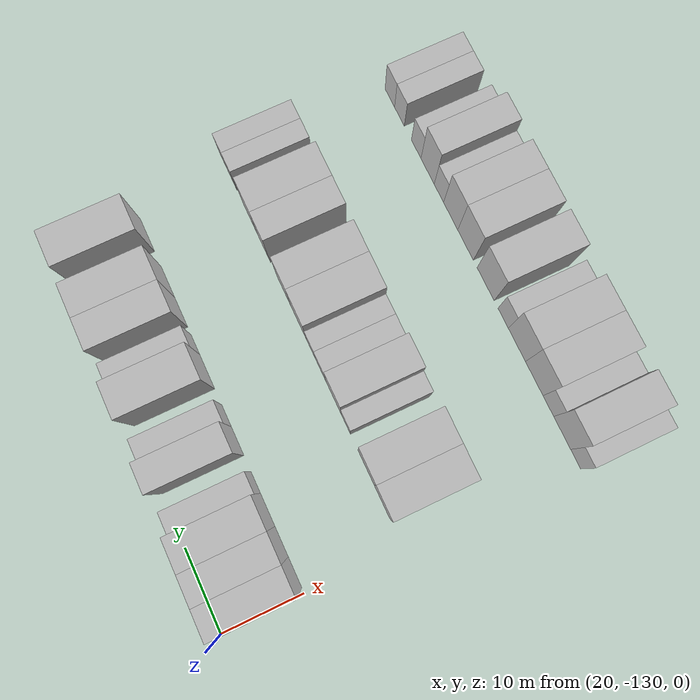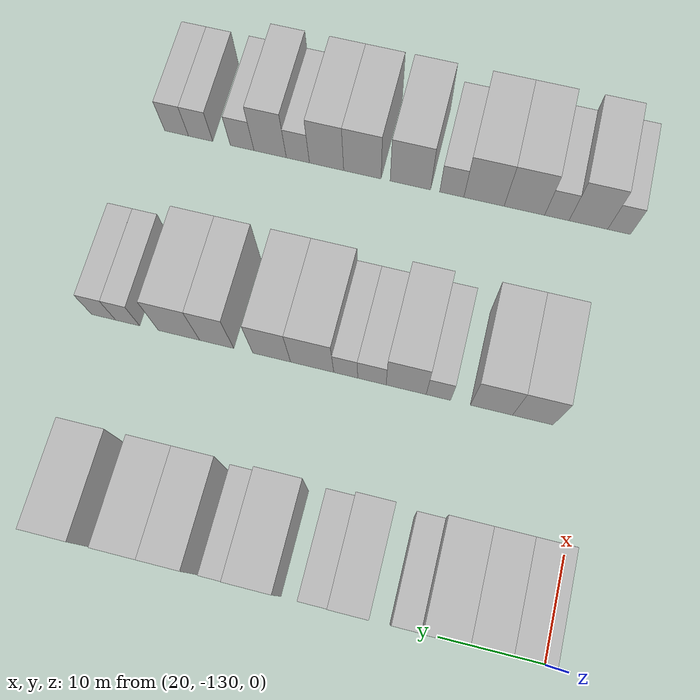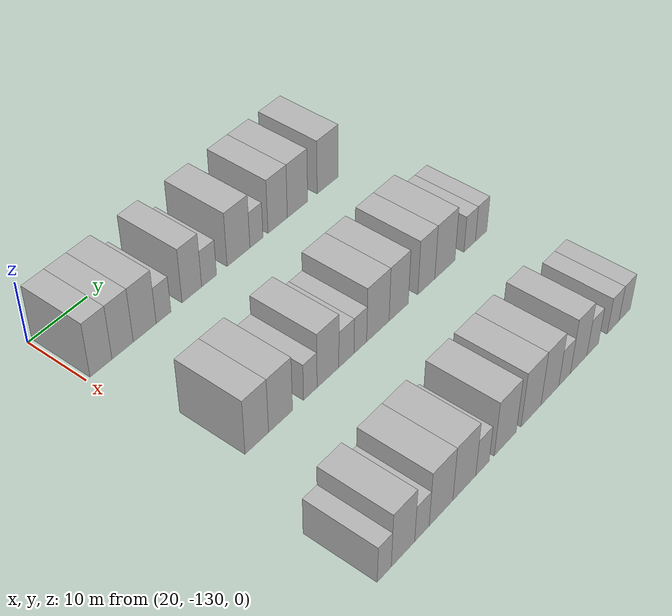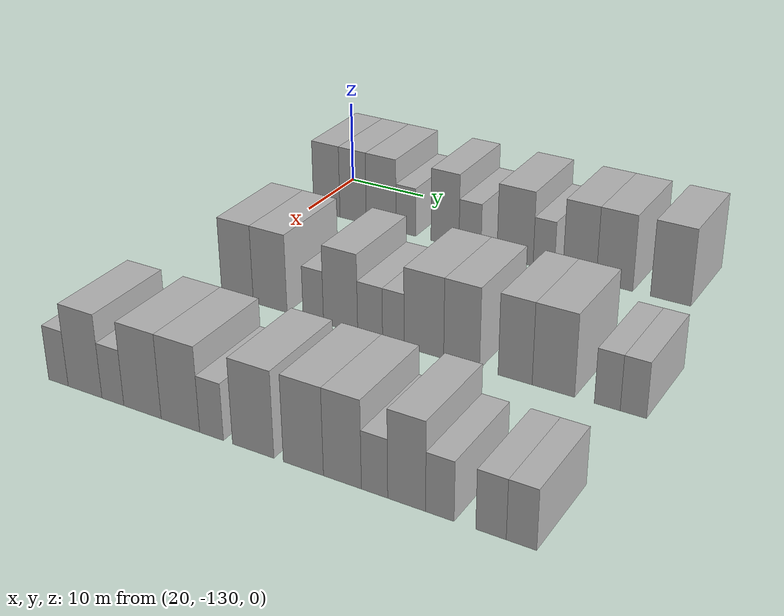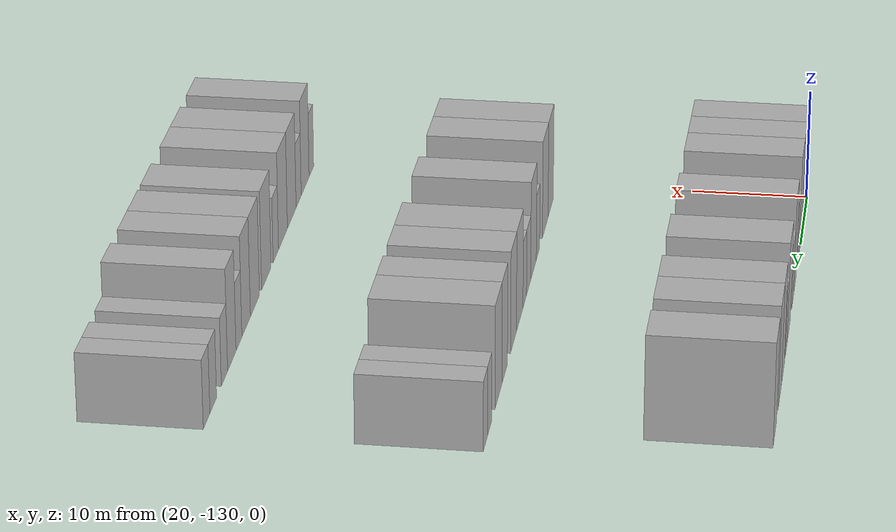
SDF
<sdf version="1.6">
 <world name="default">
  <model name="building_69">
   <static>1</static>
   <pose>25.0000 -127.5275 0 0.000000 0.000000 0.000000</pose>
   <link name="link">
    <pose>0 0 4.50 0 0 0</pose>
    <collision name="collision"><geometry><box><size>10.0000 3.6761 9.0000</size></box></geometry></collision>
    <visual name="visual">
     <cast_shadows>0</cast_shadows>
     <geometry><box><size>10.0000 3.6761 9.0000</size></box></geometry>
     <material>
      <script>
       <uri>model://HANNAS_wall/materials/scripts</uri>
       <uri>model://HANNAS_wall/materials/textures</uri>
       <name>vrc/HANNAS_wall</name>
      </script>
     </material>
    </visual>
   </link>
  </model>
  <model name="building_70">
   <static>1</static>
   <pose>25.0000 -123.8749 0 0.000000 0.000000 0.000000</pose>
   <link name="link">
    <pose>0 0 4.50 0 0 0</pose>
    <collision name="collision"><geometry><box><size>10.0000 3.6291 9.0000</size></box></geometry></collision>
    <visual name="visual">
     <cast_shadows>0</cast_shadows>
     <geometry><box><size>10.0000 3.6291 9.0000</size></box></geometry>
     <material>
      <script>
       <uri>model://HANNAS_wall/materials/scripts</uri>
       <uri>model://HANNAS_wall/materials/textures</uri>
       <name>vrc/HANNAS_wall</name>
      </script>
     </material>
    </visual>
   </link>
  </model>
  <model name="building_71">
   <static>1</static>
   <pose>25.0000 -120.0522 0 0.000000 0.000000 0.000000</pose>
   <link name="link">
    <pose>0 0 4.50 0 0 0</pose>
    <collision name="collision"><geometry><box><size>10.0000 4.0163 9.0000</size></box></geometry></collision>
    <visual name="visual">
     <cast_shadows>0</cast_shadows>
     <geometry><box><size>10.0000 4.0163 9.0000</size></box></geometry>
     <material>
      <script>
       <uri>model://HANNAS_wall/materials/scripts</uri>
       <uri>model://HANNAS_wall/materials/textures</uri>
       <name>vrc/HANNAS_wall</name>
      </script>
     </material>
    </visual>
   </link>
  </model>
  <model name="building_72">
   <static>1</static>
   <pose>25.0000 -116.7305 0 0.000000 0.000000 0.000000</pose>
   <link name="link">
    <pose>0 0 3.00 0 0 0</pose>
    <collision name="collision"><geometry><box><size>10.0000 2.6270 6.0000</size></box></geometry></collision>
    <visual name="visual">
     <cast_shadows>0</cast_shadows>
     <geometry><box><size>10.0000 2.6270 6.0000</size></box></geometry>
     <material>
      <script>
       <uri>model://HANNAS_wall/materials/scripts</uri>
       <uri>model://HANNAS_wall/materials/textures</uri>
       <name>vrc/HANNAS_wall</name>
      </script>
     </material>
    </visual>
   </link>
  </model>
  <model name="building_73">
   <static>1</static>
   <pose>25.0000 -111.6111 0 0.000000 0.000000 0.000000</pose>
   <link name="link">
    <pose>0 0 4.50 0 0 0</pose>
    <collision name="collision"><geometry><box><size>10.0000 3.6118 9.0000</size></box></geometry></collision>
    <visual name="visual">
     <cast_shadows>0</cast_shadows>
     <geometry><box><size>10.0000 3.6118 9.0000</size></box></geometry>
     <material>
      <script>
       <uri>model://HANNAS_wall/materials/scripts</uri>
       <uri>model://HANNAS_wall/materials/textures</uri>
       <name>vrc/HANNAS_wall</name>
      </script>
     </material>
    </visual>
   </link>
  </model>
  <model name="building_74">
   <static>1</static>
   <pose>25.0000 -108.4069 0 0.000000 0.000000 0.000000</pose>
   <link name="link">
    <pose>0 0 3.00 0 0 0</pose>
    <collision name="collision"><geometry><box><size>10.0000 2.7967 6.0000</size></box></geometry></collision>
    <visual name="visual">
     <cast_shadows>0</cast_shadows>
     <geometry><box><size>10.0000 2.7967 6.0000</size></box></geometry>
     <material>
      <script>
       <uri>model://HANNAS_wall/materials/scripts</uri>
       <uri>model://HANNAS_wall/materials/textures</uri>
       <name>vrc/HANNAS_wall</name>
      </script>
     </material>
    </visual>
   </link>
  </model>
  <model name="building_75">
   <static>1</static>
   <pose>25.0000 -102.7886 0 0.000000 0.000000 0.000000</pose>
   <link name="link">
    <pose>0 0 4.50 0 0 0</pose>
    <collision name="collision"><geometry><box><size>10.0000 4.4398 9.0000</size></box></geometry></collision>
    <visual name="visual">
     <cast_shadows>0</cast_shadows>
     <geometry><box><size>10.0000 4.4398 9.0000</size></box></geometry>
     <material>
      <script>
       <uri>model://HANNAS_wall/materials/scripts</uri>
       <uri>model://HANNAS_wall/materials/textures</uri>
       <name>vrc/HANNAS_wall</name>
      </script>
     </material>
    </visual>
   </link>
  </model>
  <model name="building_76">
   <static>1</static>
   <pose>25.0000 -99.2753 0 0.000000 0.000000 0.000000</pose>
   <link name="link">
    <pose>0 0 3.00 0 0 0</pose>
    <collision name="collision"><geometry><box><size>10.0000 2.5870 6.0000</size></box></geometry></collision>
    <visual name="visual">
     <cast_shadows>0</cast_shadows>
     <geometry><box><size>10.0000 2.5870 6.0000</size></box></geometry>
     <material>
      <script>
       <uri>model://HANNAS_wall/materials/scripts</uri>
       <uri>model://HANNAS_wall/materials/textures</uri>
       <name>vrc/HANNAS_wall</name>
      </script>
     </material>
    </visual>
   </link>
  </model>
  <model name="building_77">
   <static>1</static>
   <pose>25.0000 -95.0126 0 0.000000 0.000000 0.000000</pose>
   <link name="link">
    <pose>0 0 4.50 0 0 0</pose>
    <collision name="collision"><geometry><box><size>10.0000 3.9384 9.0000</size></box></geometry></collision>
    <visual name="visual">
     <cast_shadows>0</cast_shadows>
     <geometry><box><size>10.0000 3.9384 9.0000</size></box></geometry>
     <material>
      <script>
       <uri>model://HANNAS_wall/materials/scripts</uri>
       <uri>model://HANNAS_wall/materials/textures</uri>
       <name>vrc/HANNAS_wall</name>
      </script>
     </material>
    </visual>
   </link>
  </model>
  <model name="building_78">
   <static>1</static>
   <pose>25.0000 -90.9410 0 0.000000 0.000000 0.000000</pose>
   <link name="link">
    <pose>0 0 4.50 0 0 0</pose>
    <collision name="collision"><geometry><box><size>10.0000 4.2049 9.0000</size></box></geometry></collision>
    <visual name="visual">
     <cast_shadows>0</cast_shadows>
     <geometry><box><size>10.0000 4.2049 9.0000</size></box></geometry>
     <material>
      <script>
       <uri>model://HANNAS_wall/materials/scripts</uri>
       <uri>model://HANNAS_wall/materials/textures</uri>
       <name>vrc/HANNAS_wall</name>
      </script>
     </material>
    </visual>
   </link>
  </model>
  <model name="building_79">
   <static>1</static>
   <pose>25.0000 -84.5899 0 0.000000 0.000000 0.000000</pose>
   <link name="link">
    <pose>0 0 4.50 0 0 0</pose>
    <collision name="collision"><geometry><box><size>10.0000 4.4974 9.0000</size></box></geometry></collision>
    <visual name="visual">
     <cast_shadows>0</cast_shadows>
     <geometry><box><size>10.0000 4.4974 9.0000</size></box></geometry>
     <material>
      <script>
       <uri>model://HANNAS_wall/materials/scripts</uri>
       <uri>model://HANNAS_wall/materials/textures</uri>
       <name>vrc/HANNAS_wall</name>
      </script>
     </material>
    </visual>
   </link>
  </model>
  <model name="building_256">
   <static>1</static>
   <pose>47.0000 -124.7007 0 0.000000 0.000000 0.000000</pose>
   <link name="link">
    <pose>0 0 4.50 0 0 0</pose>
    <collision name="collision"><geometry><box><size>10.0000 4.0787 9.0000</size></box></geometry></collision>
    <visual name="visual">
     <cast_shadows>0</cast_shadows>
     <geometry><box><size>10.0000 4.0787 9.0000</size></box></geometry>
     <material>
      <script>
       <uri>model://HANNAS_wall/materials/scripts</uri>
       <uri>model://HANNAS_wall/materials/textures</uri>
       <name>vrc/HANNAS_wall</name>
      </script>
     </material>
    </visual>
   </link>
  </model>
  <model name="building_257">
   <static>1</static>
   <pose>47.0000 -120.5277 0 0.000000 0.000000 0.000000</pose>
   <link name="link">
    <pose>0 0 4.50 0 0 0</pose>
    <collision name="collision"><geometry><box><size>10.0000 4.2673 9.0000</size></box></geometry></collision>
    <visual name="visual">
     <cast_shadows>0</cast_shadows>
     <geometry><box><size>10.0000 4.2673 9.0000</size></box></geometry>
     <material>
      <script>
       <uri>model://HANNAS_wall/materials/scripts</uri>
       <uri>model://HANNAS_wall/materials/textures</uri>
       <name>vrc/HANNAS_wall</name>
      </script>
     </material>
    </visual>
   </link>
  </model>
  <model name="building_258">
   <static>1</static>
   <pose>47.0000 -115.1476 0 0.000000 0.000000 0.000000</pose>
   <link name="link">
    <pose>0 0 3.00 0 0 0</pose>
    <collision name="collision"><geometry><box><size>10.0000 2.4930 6.0000</size></box></geometry></collision>
    <visual name="visual">
     <cast_shadows>0</cast_shadows>
     <geometry><box><size>10.0000 2.4930 6.0000</size></box></geometry>
     <material>
      <script>
       <uri>model://HANNAS_wall/materials/scripts</uri>
       <uri>model://HANNAS_wall/materials/textures</uri>
       <name>vrc/HANNAS_wall</name>
      </script>
     </material>
    </visual>
   </link>
  </model>
  <model name="building_259">
   <static>1</static>
   <pose>47.0000 -111.8513 0 0.000000 0.000000 0.000000</pose>
   <link name="link">
    <pose>0 0 4.50 0 0 0</pose>
    <collision name="collision"><geometry><box><size>10.0000 4.0994 9.0000</size></box></geometry></collision>
    <visual name="visual">
     <cast_shadows>0</cast_shadows>
     <geometry><box><size>10.0000 4.0994 9.0000</size></box></geometry>
     <material>
      <script>
       <uri>model://HANNAS_wall/materials/scripts</uri>
       <uri>model://HANNAS_wall/materials/textures</uri>
       <name>vrc/HANNAS_wall</name>
      </script>
     </material>
    </visual>
   </link>
  </model>
  <model name="building_260">
   <static>1</static>
   <pose>47.0000 -108.3409 0 0.000000 0.000000 0.000000</pose>
   <link name="link">
    <pose>0 0 3.00 0 0 0</pose>
    <collision name="collision"><geometry><box><size>10.0000 2.9214 6.0000</size></box></geometry></collision>
    <visual name="visual">
     <cast_shadows>0</cast_shadows>
     <geometry><box><size>10.0000 2.9214 6.0000</size></box></geometry>
     <material>
      <script>
       <uri>model://HANNAS_wall/materials/scripts</uri>
       <uri>model://HANNAS_wall/materials/textures</uri>
       <name>vrc/HANNAS_wall</name>
      </script>
     </material>
    </visual>
   </link>
  </model>
  <model name="building_261">
   <static>1</static>
   <pose>47.0000 -105.6420 0 0.000000 0.000000 0.000000</pose>
   <link name="link">
    <pose>0 0 3.00 0 0 0</pose>
    <collision name="collision"><geometry><box><size>10.0000 2.4766 6.0000</size></box></geometry></collision>
    <visual name="visual">
     <cast_shadows>0</cast_shadows>
     <geometry><box><size>10.0000 2.4766 6.0000</size></box></geometry>
     <material>
      <script>
       <uri>model://HANNAS_wall/materials/scripts</uri>
       <uri>model://HANNAS_wall/materials/textures</uri>
       <name>vrc/HANNAS_wall</name>
      </script>
     </material>
    </visual>
   </link>
  </model>
  <model name="building_262">
   <static>1</static>
   <pose>47.0000 -102.1589 0 0.000000 0.000000 0.000000</pose>
   <link name="link">
    <pose>0 0 4.50 0 0 0</pose>
    <collision name="collision"><geometry><box><size>10.0000 4.4896 9.0000</size></box></geometry></collision>
    <visual name="visual">
     <cast_shadows>0</cast_shadows>
     <geometry><box><size>10.0000 4.4896 9.0000</size></box></geometry>
     <material>
      <script>
       <uri>model://HANNAS_wall/materials/scripts</uri>
       <uri>model://HANNAS_wall/materials/textures</uri>
       <name>vrc/HANNAS_wall</name>
      </script>
     </material>
    </visual>
   </link>
  </model>
  <model name="building_263">
   <static>1</static>
   <pose>47.0000 -97.9338 0 0.000000 0.000000 0.000000</pose>
   <link name="link">
    <pose>0 0 4.50 0 0 0</pose>
    <collision name="collision"><geometry><box><size>10.0000 3.9607 9.0000</size></box></geometry></collision>
    <visual name="visual">
     <cast_shadows>0</cast_shadows>
     <geometry><box><size>10.0000 3.9607 9.0000</size></box></geometry>
     <material>
      <script>
       <uri>model://HANNAS_wall/materials/scripts</uri>
       <uri>model://HANNAS_wall/materials/textures</uri>
       <name>vrc/HANNAS_wall</name>
      </script>
     </material>
    </visual>
   </link>
  </model>
  <model name="building_264">
   <static>1</static>
   <pose>47.0000 -92.1498 0 0.000000 0.000000 0.000000</pose>
   <link name="link">
    <pose>0 0 4.50 0 0 0</pose>
    <collision name="collision"><geometry><box><size>10.0000 3.6073 9.0000</size></box></geometry></collision>
    <visual name="visual">
     <cast_shadows>0</cast_shadows>
     <geometry><box><size>10.0000 3.6073 9.0000</size></box></geometry>
     <material>
      <script>
       <uri>model://HANNAS_wall/materials/scripts</uri>
       <uri>model://HANNAS_wall/materials/textures</uri>
       <name>vrc/HANNAS_wall</name>
      </script>
     </material>
    </visual>
   </link>
  </model>
  <model name="building_265">
   <static>1</static>
   <pose>47.0000 -88.1483 0 0.000000 0.000000 0.000000</pose>
   <link name="link">
    <pose>0 0 4.50 0 0 0</pose>
    <collision name="collision"><geometry><box><size>10.0000 4.3957 9.0000</size></box></geometry></collision>
    <visual name="visual">
     <cast_shadows>0</cast_shadows>
     <geometry><box><size>10.0000 4.3957 9.0000</size></box></geometry>
     <material>
      <script>
       <uri>model://HANNAS_wall/materials/scripts</uri>
       <uri>model://HANNAS_wall/materials/textures</uri>
       <name>vrc/HANNAS_wall</name>
      </script>
     </material>
    </visual>
   </link>
  </model>
  <model name="building_266">
   <static>1</static>
   <pose>47.0000 -82.6605 0 0.000000 0.000000 0.000000</pose>
   <link name="link">
    <pose>0 0 3.00 0 0 0</pose>
    <collision name="collision"><geometry><box><size>10.0000 2.5800 6.0000</size></box></geometry></collision>
    <visual name="visual">
     <cast_shadows>0</cast_shadows>
     <geometry><box><size>10.0000 2.5800 6.0000</size></box></geometry>
     <material>
      <script>
       <uri>model://HANNAS_wall/materials/scripts</uri>
       <uri>model://HANNAS_wall/materials/textures</uri>
       <name>vrc/HANNAS_wall</name>
      </script>
     </material>
    </visual>
   </link>
  </model>
  <model name="building_267">
   <static>1</static>
   <pose>47.0000 -80.0759 0 0.000000 0.000000 0.000000</pose>
   <link name="link">
    <pose>0 0 3.00 0 0 0</pose>
    <collision name="collision"><geometry><box><size>10.0000 2.5891 6.0000</size></box></geometry></collision>
    <visual name="visual">
     <cast_shadows>0</cast_shadows>
     <geometry><box><size>10.0000 2.5891 6.0000</size></box></geometry>
     <material>
      <script>
       <uri>model://HANNAS_wall/materials/scripts</uri>
       <uri>model://HANNAS_wall/materials/textures</uri>
       <name>vrc/HANNAS_wall</name>
      </script>
     </material>
    </visual>
   </link>
  </model>
  <model name="building_444">
   <static>1</static>
   <pose>69.0000 -129.8212 0 0.000000 0.000000 0.000000</pose>
   <link name="link">
    <pose>0 0 3.00 0 0 0</pose>
    <collision name="collision"><geometry><box><size>10.0000 2.4274 6.0000</size></box></geometry></collision>
    <visual name="visual">
     <cast_shadows>0</cast_shadows>
     <geometry><box><size>10.0000 2.4274 6.0000</size></box></geometry>
     <material>
      <script>
       <uri>model://HANNAS_wall/materials/scripts</uri>
       <uri>model://HANNAS_wall/materials/textures</uri>
       <name>vrc/HANNAS_wall</name>
      </script>
     </material>
    </visual>
   </link>
  </model>
  <model name="building_445">
   <static>1</static>
   <pose>69.0000 -126.5369 0 0.000000 0.000000 0.000000</pose>
   <link name="link">
    <pose>0 0 4.50 0 0 0</pose>
    <collision name="collision"><geometry><box><size>10.0000 4.1411 9.0000</size></box></geometry></collision>
    <visual name="visual">
     <cast_shadows>0</cast_shadows>
     <geometry><box><size>10.0000 4.1411 9.0000</size></box></geometry>
     <material>
      <script>
       <uri>model://HANNAS_wall/materials/scripts</uri>
       <uri>model://HANNAS_wall/materials/textures</uri>
       <name>vrc/HANNAS_wall</name>
      </script>
     </material>
    </visual>
   </link>
  </model>
  <model name="building_446">
   <static>1</static>
   <pose>69.0000 -123.1523 0 0.000000 0.000000 0.000000</pose>
   <link name="link">
    <pose>0 0 3.00 0 0 0</pose>
    <collision name="collision"><geometry><box><size>10.0000 2.6281 6.0000</size></box></geometry></collision>
    <visual name="visual">
     <cast_shadows>0</cast_shadows>
     <geometry><box><size>10.0000 2.6281 6.0000</size></box></geometry>
     <material>
      <script>
       <uri>model://HANNAS_wall/materials/scripts</uri>
       <uri>model://HANNAS_wall/materials/textures</uri>
       <name>vrc/HANNAS_wall</name>
      </script>
     </material>
    </visual>
   </link>
  </model>
  <model name="building_447">
   <static>1</static>
   <pose>69.0000 -119.6462 0 0.000000 0.000000 0.000000</pose>
   <link name="link">
    <pose>0 0 4.50 0 0 0</pose>
    <collision name="collision"><geometry><box><size>10.0000 4.3842 9.0000</size></box></geometry></collision>
    <visual name="visual">
     <cast_shadows>0</cast_shadows>
     <geometry><box><size>10.0000 4.3842 9.0000</size></box></geometry>
     <material>
      <script>
       <uri>model://HANNAS_wall/materials/scripts</uri>
       <uri>model://HANNAS_wall/materials/textures</uri>
       <name>vrc/HANNAS_wall</name>
      </script>
     </material>
    </visual>
   </link>
  </model>
  <model name="building_448">
   <static>1</static>
   <pose>69.0000 -115.2644 0 0.000000 0.000000 0.000000</pose>
   <link name="link">
    <pose>0 0 4.50 0 0 0</pose>
    <collision name="collision"><geometry><box><size>10.0000 4.3795 9.0000</size></box></geometry></collision>
    <visual name="visual">
     <cast_shadows>0</cast_shadows>
     <geometry><box><size>10.0000 4.3795 9.0000</size></box></geometry>
     <material>
      <script>
       <uri>model://HANNAS_wall/materials/scripts</uri>
       <uri>model://HANNAS_wall/materials/textures</uri>
       <name>vrc/HANNAS_wall</name>
      </script>
     </material>
    </visual>
   </link>
  </model>
  <model name="building_449">
   <static>1</static>
   <pose>69.0000 -111.7525 0 0.000000 0.000000 0.000000</pose>
   <link name="link">
    <pose>0 0 3.00 0 0 0</pose>
    <collision name="collision"><geometry><box><size>10.0000 2.6443 6.0000</size></box></geometry></collision>
    <visual name="visual">
     <cast_shadows>0</cast_shadows>
     <geometry><box><size>10.0000 2.6443 6.0000</size></box></geometry>
     <material>
      <script>
       <uri>model://HANNAS_wall/materials/scripts</uri>
       <uri>model://HANNAS_wall/materials/textures</uri>
       <name>vrc/HANNAS_wall</name>
      </script>
     </material>
    </visual>
   </link>
  </model>
  <model name="building_450">
   <static>1</static>
   <pose>69.0000 -107.2033 0 0.000000 0.000000 0.000000</pose>
   <link name="link">
    <pose>0 0 4.50 0 0 0</pose>
    <collision name="collision"><geometry><box><size>10.0000 4.4539 9.0000</size></box></geometry></collision>
    <visual name="visual">
     <cast_shadows>0</cast_shadows>
     <geometry><box><size>10.0000 4.4539 9.0000</size></box></geometry>
     <material>
      <script>
       <uri>model://HANNAS_wall/materials/scripts</uri>
       <uri>model://HANNAS_wall/materials/textures</uri>
       <name>vrc/HANNAS_wall</name>
      </script>
     </material>
    </visual>
   </link>
  </model>
  <model name="building_451">
   <static>1</static>
   <pose>69.0000 -101.8969 0 0.000000 0.000000 0.000000</pose>
   <link name="link">
    <pose>0 0 4.50 0 0 0</pose>
    <collision name="collision"><geometry><box><size>10.0000 4.1590 9.0000</size></box></geometry></collision>
    <visual name="visual">
     <cast_shadows>0</cast_shadows>
     <geometry><box><size>10.0000 4.1590 9.0000</size></box></geometry>
     <material>
      <script>
       <uri>model://HANNAS_wall/materials/scripts</uri>
       <uri>model://HANNAS_wall/materials/textures</uri>
       <name>vrc/HANNAS_wall</name>
      </script>
     </material>
    </visual>
   </link>
  </model>
  <model name="building_452">
   <static>1</static>
   <pose>69.0000 -97.9048 0 0.000000 0.000000 0.000000</pose>
   <link name="link">
    <pose>0 0 4.50 0 0 0</pose>
    <collision name="collision"><geometry><box><size>10.0000 3.8252 9.0000</size></box></geometry></collision>
    <visual name="visual">
     <cast_shadows>0</cast_shadows>
     <geometry><box><size>10.0000 3.8252 9.0000</size></box></geometry>
     <material>
      <script>
       <uri>model://HANNAS_wall/materials/scripts</uri>
       <uri>model://HANNAS_wall/materials/textures</uri>
       <name>vrc/HANNAS_wall</name>
      </script>
     </material>
    </visual>
   </link>
  </model>
  <model name="building_453">
   <static>1</static>
   <pose>69.0000 -94.6984 0 0.000000 0.000000 0.000000</pose>
   <link name="link">
    <pose>0 0 3.00 0 0 0</pose>
    <collision name="collision"><geometry><box><size>10.0000 2.5877 6.0000</size></box></geometry></collision>
    <visual name="visual">
     <cast_shadows>0</cast_shadows>
     <geometry><box><size>10.0000 2.5877 6.0000</size></box></geometry>
     <material>
      <script>
       <uri>model://HANNAS_wall/materials/scripts</uri>
       <uri>model://HANNAS_wall/materials/textures</uri>
       <name>vrc/HANNAS_wall</name>
      </script>
     </material>
    </visual>
   </link>
  </model>
  <model name="building_454">
   <static>1</static>
   <pose>69.0000 -91.5819 0 0.000000 0.000000 0.000000</pose>
   <link name="link">
    <pose>0 0 4.50 0 0 0</pose>
    <collision name="collision"><geometry><box><size>10.0000 3.6453 9.0000</size></box></geometry></collision>
    <visual name="visual">
     <cast_shadows>0</cast_shadows>
     <geometry><box><size>10.0000 3.6453 9.0000</size></box></geometry>
     <material>
      <script>
       <uri>model://HANNAS_wall/materials/scripts</uri>
       <uri>model://HANNAS_wall/materials/textures</uri>
       <name>vrc/HANNAS_wall</name>
      </script>
     </material>
    </visual>
   </link>
  </model>
  <model name="building_455">
   <static>1</static>
   <pose>69.0000 -88.4177 0 0.000000 0.000000 0.000000</pose>
   <link name="link">
    <pose>0 0 3.00 0 0 0</pose>
    <collision name="collision"><geometry><box><size>10.0000 2.6831 6.0000</size></box></geometry></collision>
    <visual name="visual">
     <cast_shadows>0</cast_shadows>
     <geometry><box><size>10.0000 2.6831 6.0000</size></box></geometry>
     <material>
      <script>
       <uri>model://HANNAS_wall/materials/scripts</uri>
       <uri>model://HANNAS_wall/materials/textures</uri>
       <name>vrc/HANNAS_wall</name>
      </script>
     </material>
    </visual>
   </link>
  </model>
  <model name="building_456">
   <static>1</static>
   <pose>69.0000 -83.6950 0 0.000000 0.000000 0.000000</pose>
   <link name="link">
    <pose>0 0 3.00 0 0 0</pose>
    <collision name="collision"><geometry><box><size>10.0000 2.7623 6.0000</size></box></geometry></collision>
    <visual name="visual">
     <cast_shadows>0</cast_shadows>
     <geometry><box><size>10.0000 2.7623 6.0000</size></box></geometry>
     <material>
      <script>
       <uri>model://HANNAS_wall/materials/scripts</uri>
       <uri>model://HANNAS_wall/materials/textures</uri>
       <name>vrc/HANNAS_wall</name>
      </script>
     </material>
    </visual>
   </link>
  </model>
  <model name="building_457">
   <static>1</static>
   <pose>69.0000 -80.9562 0 0.000000 0.000000 0.000000</pose>
   <link name="link">
    <pose>0 0 3.00 0 0 0</pose>
    <collision name="collision"><geometry><box><size>10.0000 2.7151 6.0000</size></box></geometry></collision>
    <visual name="visual">
     <cast_shadows>0</cast_shadows>
     <geometry><box><size>10.0000 2.7151 6.0000</size></box></geometry>
     <material>
      <script>
       <uri>model://HANNAS_wall/materials/scripts</uri>
       <uri>model://HANNAS_wall/materials/textures</uri>
       <name>vrc/HANNAS_wall</name>
      </script>
     </material>
    </visual>
   </link>
  </model>
 </world>
</sdf>
